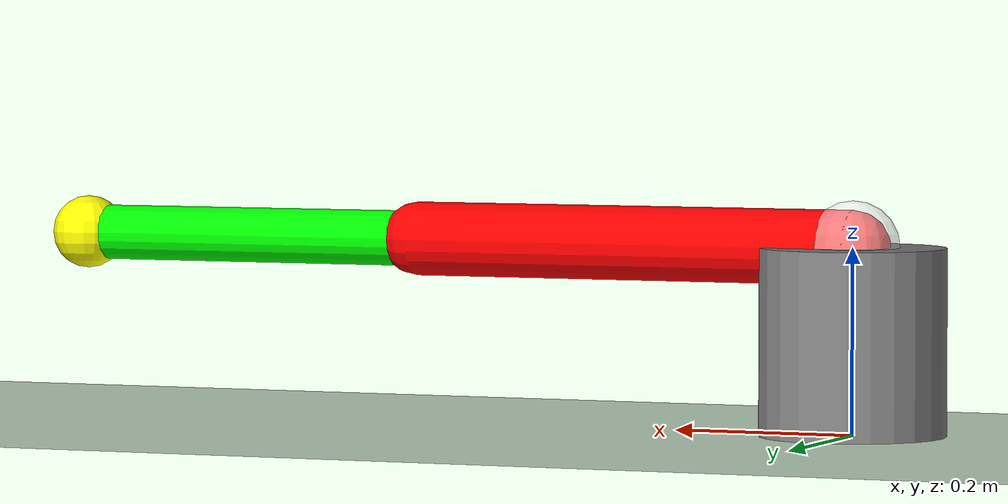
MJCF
<mujoco model="2dof_arm_ik">
    <option gravity="0 0 -9.81" timestep="0.002" />

    <worldbody>
        <light pos="0 0 3" dir="0 0 -1" />
        <geom name="floor" type="plane" size="5 5 0.1" rgba="0.8 0.9 0.8 1" />

        <!-- 로봇 베이스 -->
        <body name="base" pos="0 0 0.1">
            <geom type="cylinder" size="0.1 0.1" rgba="0.5 0.5 0.5 1" />

            <!-- 첫 번째 링크 (어깨) -->
            <body name="link1" pos="0 0 0.1">
                <joint name="joint1" type="hinge" axis="0 0 1" damping="2.0" />
                <geom type="capsule" fromto="0 0 0 0.5 0 0" size="0.04" rgba="1 0 0 1" />

                <!-- 두 번째 링크 (팔꿈치) -->
                <body name="link2" pos="0.5 0 0">
                    <joint name="joint2" type="hinge" axis="0 0 1" damping="2.0" />
                    <geom type="capsule" fromto="0 0 0 0.4 0 0" size="0.03" rgba="0 1 0 1" />
                    <site name="ee" pos="0.4 0 0" size="0.04" rgba="1 1 0 1" />
                </body>
            </body>
        </body>

        <!-- IK 타겟 -->
        <body name="target" pos="0 0 0.2">
            <joint name="target_x" type="slide" axis="1 0 0" damping="10" />
            <joint name="target_y" type="slide" axis="0 1 0" damping="10" />
            <joint name="target_z" type="slide" axis="0 0 1" damping="10" />
            <geom type="sphere" size="0.05" rgba="1 1 1 0.5" contype="0" conaffinity="0" />
            <site name="target_site" pos="0 0 0" size="0.01" />
        </body>
    </worldbody>

    <actuator>
        <!-- 로봇 팔 조인트 제어 (Kp 복구) -->
        <position name="arm_pos1" joint="joint1" kp="500" />
        <position name="arm_pos2" joint="joint2" kp="500" />

        <!-- 타겟 위치 제어 -->
        <position name="[Tgt] X" joint="target_x" kp="500" ctrlrange="-1 1" forcerange="-100 100" />
        <position name="[Tgt] Y" joint="target_y" kp="500" ctrlrange="-1 1" forcerange="-100 100" />
        <position name="[Tgt] Z" joint="target_z" kp="500" ctrlrange="0 0.5" forcerange="-100 100" />
    </actuator>

    <sensor>
        <framepos name="actual_ee" objtype="site" objname="ee" />
        <framepos name="target_pos" objtype="site" objname="target_site" />
    </sensor>
</mujoco>
